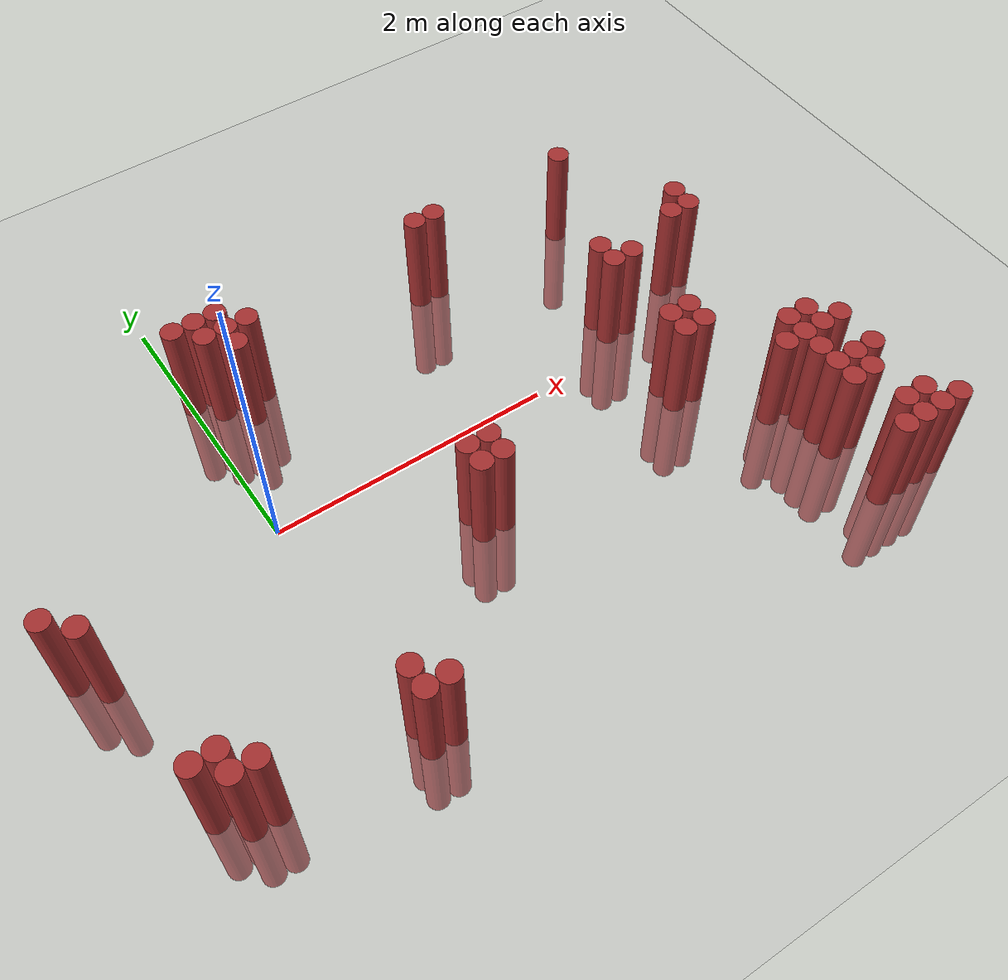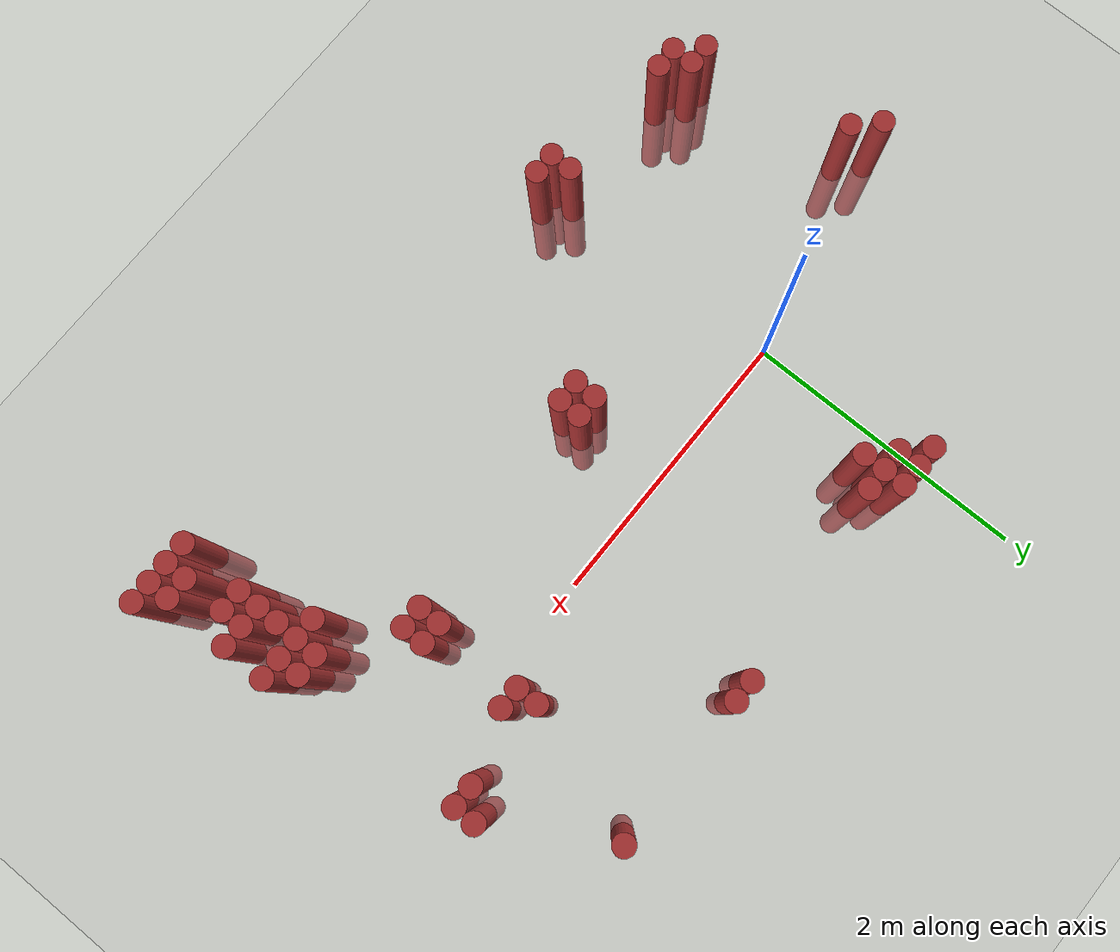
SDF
<sdf version="1.6">
 <world name="default">
  <model name="ground_plane">
   <static>1</static>
   <link name="link">
    <collision name="collision">
     <geometry><plane><normal>0 0 1</normal><size>100 100</size></plane></geometry>
     <surface><friction><ode><mu>100</mu><mu2>50</mu2></ode></friction></surface>
    </collision>
    <visual name="visual">
     <cast_shadows>0</cast_shadows>
     <geometry><plane><normal>0 0 1</normal><size>100 100</size></plane></geometry>
     <material>
      <script><uri>file://media/materials/scripts/gazebo.material</uri><name>Gazebo/Grey</name></script>
     </material>
    </visual>
   </link>
  </model>
  <model name="unit_cylinder_304">
   <static>1</static>
   <pose>-1.475000 -0.275000 0.000000 0.000000 0.000000 0.000000</pose>
   <link name="link">
    <inertial>
     <mass>1</mass>
     <inertia><ixx>0.145833</ixx><ixy>0</ixy><ixz>0</ixz><iyy>0.145833</iyy><iyz>0</iyz><izz>0.125</izz></inertia>
    </inertial>
    <collision name="collision">
     <geometry><cylinder><radius>0.075000</radius><length>1.5</length></cylinder></geometry>
    </collision>
    <visual name="visual">
     <geometry><cylinder><radius>0.075000</radius><length>1.5</length></cylinder></geometry>
     <material>
      <ambient>0.648000 0.192000 0.192000 1</ambient>
      <diffuse>0.648000 0.192000 0.192000 1</diffuse>
     </material>
     <material>
      <script><name>Gazebo/Grey</name><uri>file://media/materials/scripts/gazebo.material</uri></script>
     </material>
    </visual>
   </link>
  </model>
  <model name="unit_cylinder_307">
   <static>1</static>
   <pose>-1.325000 -0.425000 0.000000 0.000000 0.000000 0.000000</pose>
   <link name="link">
    <inertial>
     <mass>1</mass>
     <inertia><ixx>0.145833</ixx><ixy>0</ixy><ixz>0</ixz><iyy>0.145833</iyy><iyz>0</iyz><izz>0.125</izz></inertia>
    </inertial>
    <collision name="collision">
     <geometry><cylinder><radius>0.075000</radius><length>1.5</length></cylinder></geometry>
    </collision>
    <visual name="visual">
     <geometry><cylinder><radius>0.075000</radius><length>1.5</length></cylinder></geometry>
     <material>
      <ambient>0.648000 0.192000 0.192000 1</ambient>
      <diffuse>0.648000 0.192000 0.192000 1</diffuse>
     </material>
     <material>
      <script><name>Gazebo/Grey</name><uri>file://media/materials/scripts/gazebo.material</uri></script>
     </material>
    </visual>
   </link>
  </model>
  <model name="unit_cylinder_310">
   <static>1</static>
   <pose>-1.175000 -1.475000 0.000000 0.000000 0.000000 0.000000</pose>
   <link name="link">
    <inertial>
     <mass>1</mass>
     <inertia><ixx>0.145833</ixx><ixy>0</ixy><ixz>0</ixz><iyy>0.145833</iyy><iyz>0</iyz><izz>0.125</izz></inertia>
    </inertial>
    <collision name="collision">
     <geometry><cylinder><radius>0.075000</radius><length>1.5</length></cylinder></geometry>
    </collision>
    <visual name="visual">
     <geometry><cylinder><radius>0.075000</radius><length>1.5</length></cylinder></geometry>
     <material>
      <ambient>0.648000 0.192000 0.192000 1</ambient>
      <diffuse>0.648000 0.192000 0.192000 1</diffuse>
     </material>
     <material>
      <script><name>Gazebo/Grey</name><uri>file://media/materials/scripts/gazebo.material</uri></script>
     </material>
    </visual>
   </link>
  </model>
  <model name="unit_cylinder_312">
   <static>1</static>
   <pose>-1.025000 -1.625000 0.000000 0.000000 0.000000 0.000000</pose>
   <link name="link">
    <inertial>
     <mass>1</mass>
     <inertia><ixx>0.145833</ixx><ixy>0</ixy><ixz>0</ixz><iyy>0.145833</iyy><iyz>0</iyz><izz>0.125</izz></inertia>
    </inertial>
    <collision name="collision">
     <geometry><cylinder><radius>0.075000</radius><length>1.5</length></cylinder></geometry>
    </collision>
    <visual name="visual">
     <geometry><cylinder><radius>0.075000</radius><length>1.5</length></cylinder></geometry>
     <material>
      <ambient>0.648000 0.192000 0.192000 1</ambient>
      <diffuse>0.648000 0.192000 0.192000 1</diffuse>
     </material>
     <material>
      <script><name>Gazebo/Grey</name><uri>file://media/materials/scripts/gazebo.material</uri></script>
     </material>
    </visual>
   </link>
  </model>
  <model name="unit_cylinder_313">
   <static>1</static>
   <pose>-1.025000 -1.475000 0.000000 0.000000 0.000000 0.000000</pose>
   <link name="link">
    <inertial>
     <mass>1</mass>
     <inertia><ixx>0.145833</ixx><ixy>0</ixy><ixz>0</ixz><iyy>0.145833</iyy><iyz>0</iyz><izz>0.125</izz></inertia>
    </inertial>
    <collision name="collision">
     <geometry><cylinder><radius>0.075000</radius><length>1.5</length></cylinder></geometry>
    </collision>
    <visual name="visual">
     <geometry><cylinder><radius>0.075000</radius><length>1.5</length></cylinder></geometry>
     <material>
      <ambient>0.648000 0.192000 0.192000 1</ambient>
      <diffuse>0.648000 0.192000 0.192000 1</diffuse>
     </material>
     <material>
      <script><name>Gazebo/Grey</name><uri>file://media/materials/scripts/gazebo.material</uri></script>
     </material>
    </visual>
   </link>
  </model>
  <model name="unit_cylinder_314">
   <static>1</static>
   <pose>-0.875000 -1.625000 0.000000 0.000000 0.000000 0.000000</pose>
   <link name="link">
    <inertial>
     <mass>1</mass>
     <inertia><ixx>0.145833</ixx><ixy>0</ixy><ixz>0</ixz><iyy>0.145833</iyy><iyz>0</iyz><izz>0.125</izz></inertia>
    </inertial>
    <collision name="collision">
     <geometry><cylinder><radius>0.075000</radius><length>1.5</length></cylinder></geometry>
    </collision>
    <visual name="visual">
     <geometry><cylinder><radius>0.075000</radius><length>1.5</length></cylinder></geometry>
     <material>
      <ambient>0.648000 0.192000 0.192000 1</ambient>
      <diffuse>0.648000 0.192000 0.192000 1</diffuse>
     </material>
     <material>
      <script><name>Gazebo/Grey</name><uri>file://media/materials/scripts/gazebo.material</uri></script>
     </material>
    </visual>
   </link>
  </model>
  <model name="unit_cylinder_330">
   <static>1</static>
   <pose>0.025000 -1.775000 0.000000 0.000000 0.000000 0.000000</pose>
   <link name="link">
    <inertial>
     <mass>1</mass>
     <inertia><ixx>0.145833</ixx><ixy>0</ixy><ixz>0</ixz><iyy>0.145833</iyy><iyz>0</iyz><izz>0.125</izz></inertia>
    </inertial>
    <collision name="collision">
     <geometry><cylinder><radius>0.075000</radius><length>1.5</length></cylinder></geometry>
    </collision>
    <visual name="visual">
     <geometry><cylinder><radius>0.075000</radius><length>1.5</length></cylinder></geometry>
     <material>
      <ambient>0.648000 0.192000 0.192000 1</ambient>
      <diffuse>0.648000 0.192000 0.192000 1</diffuse>
     </material>
     <material>
      <script><name>Gazebo/Grey</name><uri>file://media/materials/scripts/gazebo.material</uri></script>
     </material>
    </visual>
   </link>
  </model>
  <model name="unit_cylinder_331">
   <static>1</static>
   <pose>0.025000 -1.625000 0.000000 0.000000 0.000000 0.000000</pose>
   <link name="link">
    <inertial>
     <mass>1</mass>
     <inertia><ixx>0.145833</ixx><ixy>0</ixy><ixz>0</ixz><iyy>0.145833</iyy><iyz>0</iyz><izz>0.125</izz></inertia>
    </inertial>
    <collision name="collision">
     <geometry><cylinder><radius>0.075000</radius><length>1.5</length></cylinder></geometry>
    </collision>
    <visual name="visual">
     <geometry><cylinder><radius>0.075000</radius><length>1.5</length></cylinder></geometry>
     <material>
      <ambient>0.648000 0.192000 0.192000 1</ambient>
      <diffuse>0.648000 0.192000 0.192000 1</diffuse>
     </material>
     <material>
      <script><name>Gazebo/Grey</name><uri>file://media/materials/scripts/gazebo.material</uri></script>
     </material>
    </visual>
   </link>
  </model>
  <model name="unit_cylinder_332">
   <static>1</static>
   <pose>0.025000 1.225000 0.000000 0.000000 0.000000 0.000000</pose>
   <link name="link">
    <inertial>
     <mass>1</mass>
     <inertia><ixx>0.145833</ixx><ixy>0</ixy><ixz>0</ixz><iyy>0.145833</iyy><iyz>0</iyz><izz>0.125</izz></inertia>
    </inertial>
    <collision name="collision">
     <geometry><cylinder><radius>0.075000</radius><length>1.5</length></cylinder></geometry>
    </collision>
    <visual name="visual">
     <geometry><cylinder><radius>0.075000</radius><length>1.5</length></cylinder></geometry>
     <material>
      <ambient>0.648000 0.192000 0.192000 1</ambient>
      <diffuse>0.648000 0.192000 0.192000 1</diffuse>
     </material>
     <material>
      <script><name>Gazebo/Grey</name><uri>file://media/materials/scripts/gazebo.material</uri></script>
     </material>
    </visual>
   </link>
  </model>
  <model name="unit_cylinder_336">
   <static>1</static>
   <pose>0.175000 -1.775000 0.000000 0.000000 0.000000 0.000000</pose>
   <link name="link">
    <inertial>
     <mass>1</mass>
     <inertia><ixx>0.145833</ixx><ixy>0</ixy><ixz>0</ixz><iyy>0.145833</iyy><iyz>0</iyz><izz>0.125</izz></inertia>
    </inertial>
    <collision name="collision">
     <geometry><cylinder><radius>0.075000</radius><length>1.5</length></cylinder></geometry>
    </collision>
    <visual name="visual">
     <geometry><cylinder><radius>0.075000</radius><length>1.5</length></cylinder></geometry>
     <material>
      <ambient>0.648000 0.192000 0.192000 1</ambient>
      <diffuse>0.648000 0.192000 0.192000 1</diffuse>
     </material>
     <material>
      <script><name>Gazebo/Grey</name><uri>file://media/materials/scripts/gazebo.material</uri></script>
     </material>
    </visual>
   </link>
  </model>
  <model name="unit_cylinder_337">
   <static>1</static>
   <pose>0.175000 1.075000 0.000000 0.000000 0.000000 0.000000</pose>
   <link name="link">
    <inertial>
     <mass>1</mass>
     <inertia><ixx>0.145833</ixx><ixy>0</ixy><ixz>0</ixz><iyy>0.145833</iyy><iyz>0</iyz><izz>0.125</izz></inertia>
    </inertial>
    <collision name="collision">
     <geometry><cylinder><radius>0.075000</radius><length>1.5</length></cylinder></geometry>
    </collision>
    <visual name="visual">
     <geometry><cylinder><radius>0.075000</radius><length>1.5</length></cylinder></geometry>
     <material>
      <ambient>0.648000 0.192000 0.192000 1</ambient>
      <diffuse>0.648000 0.192000 0.192000 1</diffuse>
     </material>
     <material>
      <script><name>Gazebo/Grey</name><uri>file://media/materials/scripts/gazebo.material</uri></script>
     </material>
    </visual>
   </link>
  </model>
  <model name="unit_cylinder_338">
   <static>1</static>
   <pose>0.175000 1.225000 0.000000 0.000000 0.000000 0.000000</pose>
   <link name="link">
    <inertial>
     <mass>1</mass>
     <inertia><ixx>0.145833</ixx><ixy>0</ixy><ixz>0</ixz><iyy>0.145833</iyy><iyz>0</iyz><izz>0.125</izz></inertia>
    </inertial>
    <collision name="collision">
     <geometry><cylinder><radius>0.075000</radius><length>1.5</length></cylinder></geometry>
    </collision>
    <visual name="visual">
     <geometry><cylinder><radius>0.075000</radius><length>1.5</length></cylinder></geometry>
     <material>
      <ambient>0.648000 0.192000 0.192000 1</ambient>
      <diffuse>0.648000 0.192000 0.192000 1</diffuse>
     </material>
     <material>
      <script><name>Gazebo/Grey</name><uri>file://media/materials/scripts/gazebo.material</uri></script>
     </material>
    </visual>
   </link>
  </model>
  <model name="unit_cylinder_340">
   <static>1</static>
   <pose>0.325000 0.925000 0.000000 0.000000 0.000000 0.000000</pose>
   <link name="link">
    <inertial>
     <mass>1</mass>
     <inertia><ixx>0.145833</ixx><ixy>0</ixy><ixz>0</ixz><iyy>0.145833</iyy><iyz>0</iyz><izz>0.125</izz></inertia>
    </inertial>
    <collision name="collision">
     <geometry><cylinder><radius>0.075000</radius><length>1.5</length></cylinder></geometry>
    </collision>
    <visual name="visual">
     <geometry><cylinder><radius>0.075000</radius><length>1.5</length></cylinder></geometry>
     <material>
      <ambient>0.648000 0.192000 0.192000 1</ambient>
      <diffuse>0.648000 0.192000 0.192000 1</diffuse>
     </material>
     <material>
      <script><name>Gazebo/Grey</name><uri>file://media/materials/scripts/gazebo.material</uri></script>
     </material>
    </visual>
   </link>
  </model>
  <model name="unit_cylinder_341">
   <static>1</static>
   <pose>0.325000 1.075000 0.000000 0.000000 0.000000 0.000000</pose>
   <link name="link">
    <inertial>
     <mass>1</mass>
     <inertia><ixx>0.145833</ixx><ixy>0</ixy><ixz>0</ixz><iyy>0.145833</iyy><iyz>0</iyz><izz>0.125</izz></inertia>
    </inertial>
    <collision name="collision">
     <geometry><cylinder><radius>0.075000</radius><length>1.5</length></cylinder></geometry>
    </collision>
    <visual name="visual">
     <geometry><cylinder><radius>0.075000</radius><length>1.5</length></cylinder></geometry>
     <material>
      <ambient>0.648000 0.192000 0.192000 1</ambient>
      <diffuse>0.648000 0.192000 0.192000 1</diffuse>
     </material>
     <material>
      <script><name>Gazebo/Grey</name><uri>file://media/materials/scripts/gazebo.material</uri></script>
     </material>
    </visual>
   </link>
  </model>
  <model name="unit_cylinder_342">
   <static>1</static>
   <pose>0.325000 1.225000 0.000000 0.000000 0.000000 0.000000</pose>
   <link name="link">
    <inertial>
     <mass>1</mass>
     <inertia><ixx>0.145833</ixx><ixy>0</ixy><ixz>0</ixz><iyy>0.145833</iyy><iyz>0</iyz><izz>0.125</izz></inertia>
    </inertial>
    <collision name="collision">
     <geometry><cylinder><radius>0.075000</radius><length>1.5</length></cylinder></geometry>
    </collision>
    <visual name="visual">
     <geometry><cylinder><radius>0.075000</radius><length>1.5</length></cylinder></geometry>
     <material>
      <ambient>0.648000 0.192000 0.192000 1</ambient>
      <diffuse>0.648000 0.192000 0.192000 1</diffuse>
     </material>
     <material>
      <script><name>Gazebo/Grey</name><uri>file://media/materials/scripts/gazebo.material</uri></script>
     </material>
    </visual>
   </link>
  </model>
  <model name="unit_cylinder_344">
   <static>1</static>
   <pose>0.475000 1.075000 0.000000 0.000000 0.000000 0.000000</pose>
   <link name="link">
    <inertial>
     <mass>1</mass>
     <inertia><ixx>0.145833</ixx><ixy>0</ixy><ixz>0</ixz><iyy>0.145833</iyy><iyz>0</iyz><izz>0.125</izz></inertia>
    </inertial>
    <collision name="collision">
     <geometry><cylinder><radius>0.075000</radius><length>1.5</length></cylinder></geometry>
    </collision>
    <visual name="visual">
     <geometry><cylinder><radius>0.075000</radius><length>1.5</length></cylinder></geometry>
     <material>
      <ambient>0.648000 0.192000 0.192000 1</ambient>
      <diffuse>0.648000 0.192000 0.192000 1</diffuse>
     </material>
     <material>
      <script><name>Gazebo/Grey</name><uri>file://media/materials/scripts/gazebo.material</uri></script>
     </material>
    </visual>
   </link>
  </model>
  <model name="unit_cylinder_345">
   <static>1</static>
   <pose>1.075000 -0.725000 0.000000 0.000000 0.000000 0.000000</pose>
   <link name="link">
    <inertial>
     <mass>1</mass>
     <inertia><ixx>0.145833</ixx><ixy>0</ixy><ixz>0</ixz><iyy>0.145833</iyy><iyz>0</iyz><izz>0.125</izz></inertia>
    </inertial>
    <collision name="collision">
     <geometry><cylinder><radius>0.075000</radius><length>1.5</length></cylinder></geometry>
    </collision>
    <visual name="visual">
     <geometry><cylinder><radius>0.075000</radius><length>1.5</length></cylinder></geometry>
     <material>
      <ambient>0.648000 0.192000 0.192000 1</ambient>
      <diffuse>0.648000 0.192000 0.192000 1</diffuse>
     </material>
     <material>
      <script><name>Gazebo/Grey</name><uri>file://media/materials/scripts/gazebo.material</uri></script>
     </material>
    </visual>
   </link>
  </model>
  <model name="unit_cylinder_346">
   <static>1</static>
   <pose>1.075000 -0.575000 0.000000 0.000000 0.000000 0.000000</pose>
   <link name="link">
    <inertial>
     <mass>1</mass>
     <inertia><ixx>0.145833</ixx><ixy>0</ixy><ixz>0</ixz><iyy>0.145833</iyy><iyz>0</iyz><izz>0.125</izz></inertia>
    </inertial>
    <collision name="collision">
     <geometry><cylinder><radius>0.075000</radius><length>1.5</length></cylinder></geometry>
    </collision>
    <visual name="visual">
     <geometry><cylinder><radius>0.075000</radius><length>1.5</length></cylinder></geometry>
     <material>
      <ambient>0.648000 0.192000 0.192000 1</ambient>
      <diffuse>0.648000 0.192000 0.192000 1</diffuse>
     </material>
     <material>
      <script><name>Gazebo/Grey</name><uri>file://media/materials/scripts/gazebo.material</uri></script>
     </material>
    </visual>
   </link>
  </model>
  <model name="unit_cylinder_351">
   <static>1</static>
   <pose>1.225000 -0.725000 0.000000 0.000000 0.000000 0.000000</pose>
   <link name="link">
    <inertial>
     <mass>1</mass>
     <inertia><ixx>0.145833</ixx><ixy>0</ixy><ixz>0</ixz><iyy>0.145833</iyy><iyz>0</iyz><izz>0.125</izz></inertia>
    </inertial>
    <collision name="collision">
     <geometry><cylinder><radius>0.075000</radius><length>1.5</length></cylinder></geometry>
    </collision>
    <visual name="visual">
     <geometry><cylinder><radius>0.075000</radius><length>1.5</length></cylinder></geometry>
     <material>
      <ambient>0.648000 0.192000 0.192000 1</ambient>
      <diffuse>0.648000 0.192000 0.192000 1</diffuse>
     </material>
     <material>
      <script><name>Gazebo/Grey</name><uri>file://media/materials/scripts/gazebo.material</uri></script>
     </material>
    </visual>
   </link>
  </model>
  <model name="unit_cylinder_352">
   <static>1</static>
   <pose>1.225000 -0.575000 0.000000 0.000000 0.000000 0.000000</pose>
   <link name="link">
    <inertial>
     <mass>1</mass>
     <inertia><ixx>0.145833</ixx><ixy>0</ixy><ixz>0</ixz><iyy>0.145833</iyy><iyz>0</iyz><izz>0.125</izz></inertia>
    </inertial>
    <collision name="collision">
     <geometry><cylinder><radius>0.075000</radius><length>1.5</length></cylinder></geometry>
    </collision>
    <visual name="visual">
     <geometry><cylinder><radius>0.075000</radius><length>1.5</length></cylinder></geometry>
     <material>
      <ambient>0.648000 0.192000 0.192000 1</ambient>
      <diffuse>0.648000 0.192000 0.192000 1</diffuse>
     </material>
     <material>
      <script><name>Gazebo/Grey</name><uri>file://media/materials/scripts/gazebo.material</uri></script>
     </material>
    </visual>
   </link>
  </model>
  <model name="unit_cylinder_376">
   <static>1</static>
   <pose>1.825000 1.225000 0.000000 0.000000 0.000000 0.000000</pose>
   <link name="link">
    <inertial>
     <mass>1</mass>
     <inertia><ixx>0.145833</ixx><ixy>0</ixy><ixz>0</ixz><iyy>0.145833</iyy><iyz>0</iyz><izz>0.125</izz></inertia>
    </inertial>
    <collision name="collision">
     <geometry><cylinder><radius>0.075000</radius><length>1.5</length></cylinder></geometry>
    </collision>
    <visual name="visual">
     <geometry><cylinder><radius>0.075000</radius><length>1.5</length></cylinder></geometry>
     <material>
      <ambient>0.648000 0.192000 0.192000 1</ambient>
      <diffuse>0.648000 0.192000 0.192000 1</diffuse>
     </material>
     <material>
      <script><name>Gazebo/Grey</name><uri>file://media/materials/scripts/gazebo.material</uri></script>
     </material>
    </visual>
   </link>
  </model>
  <model name="unit_cylinder_380">
   <static>1</static>
   <pose>1.975000 1.225000 0.000000 0.000000 0.000000 0.000000</pose>
   <link name="link">
    <inertial>
     <mass>1</mass>
     <inertia><ixx>0.145833</ixx><ixy>0</ixy><ixz>0</ixz><iyy>0.145833</iyy><iyz>0</iyz><izz>0.125</izz></inertia>
    </inertial>
    <collision name="collision">
     <geometry><cylinder><radius>0.075000</radius><length>1.5</length></cylinder></geometry>
    </collision>
    <visual name="visual">
     <geometry><cylinder><radius>0.075000</radius><length>1.5</length></cylinder></geometry>
     <material>
      <ambient>0.648000 0.192000 0.192000 1</ambient>
      <diffuse>0.648000 0.192000 0.192000 1</diffuse>
     </material>
     <material>
      <script><name>Gazebo/Grey</name><uri>file://media/materials/scripts/gazebo.material</uri></script>
     </material>
    </visual>
   </link>
  </model>
  <model name="unit_cylinder_403">
   <static>1</static>
   <pose>2.725000 -0.575000 0.000000 0.000000 0.000000 0.000000</pose>
   <link name="link">
    <inertial>
     <mass>1</mass>
     <inertia><ixx>0.145833</ixx><ixy>0</ixy><ixz>0</ixz><iyy>0.145833</iyy><iyz>0</iyz><izz>0.125</izz></inertia>
    </inertial>
    <collision name="collision">
     <geometry><cylinder><radius>0.075000</radius><length>1.5</length></cylinder></geometry>
    </collision>
    <visual name="visual">
     <geometry><cylinder><radius>0.075000</radius><length>1.5</length></cylinder></geometry>
     <material>
      <ambient>0.648000 0.192000 0.192000 1</ambient>
      <diffuse>0.648000 0.192000 0.192000 1</diffuse>
     </material>
     <material>
      <script><name>Gazebo/Grey</name><uri>file://media/materials/scripts/gazebo.material</uri></script>
     </material>
    </visual>
   </link>
  </model>
  <model name="unit_cylinder_404">
   <static>1</static>
   <pose>2.725000 -0.425000 0.000000 0.000000 0.000000 0.000000</pose>
   <link name="link">
    <inertial>
     <mass>1</mass>
     <inertia><ixx>0.145833</ixx><ixy>0</ixy><ixz>0</ixz><iyy>0.145833</iyy><iyz>0</iyz><izz>0.125</izz></inertia>
    </inertial>
    <collision name="collision">
     <geometry><cylinder><radius>0.075000</radius><length>1.5</length></cylinder></geometry>
    </collision>
    <visual name="visual">
     <geometry><cylinder><radius>0.075000</radius><length>1.5</length></cylinder></geometry>
     <material>
      <ambient>0.648000 0.192000 0.192000 1</ambient>
      <diffuse>0.648000 0.192000 0.192000 1</diffuse>
     </material>
     <material>
      <script><name>Gazebo/Grey</name><uri>file://media/materials/scripts/gazebo.material</uri></script>
     </material>
    </visual>
   </link>
  </model>
  <model name="unit_cylinder_405">
   <static>1</static>
   <pose>2.725000 0.175000 0.000000 0.000000 0.000000 0.000000</pose>
   <link name="link">
    <inertial>
     <mass>1</mass>
     <inertia><ixx>0.145833</ixx><ixy>0</ixy><ixz>0</ixz><iyy>0.145833</iyy><iyz>0</iyz><izz>0.125</izz></inertia>
    </inertial>
    <collision name="collision">
     <geometry><cylinder><radius>0.075000</radius><length>1.5</length></cylinder></geometry>
    </collision>
    <visual name="visual">
     <geometry><cylinder><radius>0.075000</radius><length>1.5</length></cylinder></geometry>
     <material>
      <ambient>0.648000 0.192000 0.192000 1</ambient>
      <diffuse>0.648000 0.192000 0.192000 1</diffuse>
     </material>
     <material>
      <script><name>Gazebo/Grey</name><uri>file://media/materials/scripts/gazebo.material</uri></script>
     </material>
    </visual>
   </link>
  </model>
  <model name="unit_cylinder_406">
   <static>1</static>
   <pose>2.725000 0.325000 0.000000 0.000000 0.000000 0.000000</pose>
   <link name="link">
    <inertial>
     <mass>1</mass>
     <inertia><ixx>0.145833</ixx><ixy>0</ixy><ixz>0</ixz><iyy>0.145833</iyy><iyz>0</iyz><izz>0.125</izz></inertia>
    </inertial>
    <collision name="collision">
     <geometry><cylinder><radius>0.075000</radius><length>1.5</length></cylinder></geometry>
    </collision>
    <visual name="visual">
     <geometry><cylinder><radius>0.075000</radius><length>1.5</length></cylinder></geometry>
     <material>
      <ambient>0.648000 0.192000 0.192000 1</ambient>
      <diffuse>0.648000 0.192000 0.192000 1</diffuse>
     </material>
     <material>
      <script><name>Gazebo/Grey</name><uri>file://media/materials/scripts/gazebo.material</uri></script>
     </material>
    </visual>
   </link>
  </model>
  <model name="unit_cylinder_411">
   <static>1</static>
   <pose>2.875000 -0.575000 0.000000 0.000000 0.000000 0.000000</pose>
   <link name="link">
    <inertial>
     <mass>1</mass>
     <inertia><ixx>0.145833</ixx><ixy>0</ixy><ixz>0</ixz><iyy>0.145833</iyy><iyz>0</iyz><izz>0.125</izz></inertia>
    </inertial>
    <collision name="collision">
     <geometry><cylinder><radius>0.075000</radius><length>1.5</length></cylinder></geometry>
    </collision>
    <visual name="visual">
     <geometry><cylinder><radius>0.075000</radius><length>1.5</length></cylinder></geometry>
     <material>
      <ambient>0.648000 0.192000 0.192000 1</ambient>
      <diffuse>0.648000 0.192000 0.192000 1</diffuse>
     </material>
     <material>
      <script><name>Gazebo/Grey</name><uri>file://media/materials/scripts/gazebo.material</uri></script>
     </material>
    </visual>
   </link>
  </model>
  <model name="unit_cylinder_412">
   <static>1</static>
   <pose>2.875000 -0.425000 0.000000 0.000000 0.000000 0.000000</pose>
   <link name="link">
    <inertial>
     <mass>1</mass>
     <inertia><ixx>0.145833</ixx><ixy>0</ixy><ixz>0</ixz><iyy>0.145833</iyy><iyz>0</iyz><izz>0.125</izz></inertia>
    </inertial>
    <collision name="collision">
     <geometry><cylinder><radius>0.075000</radius><length>1.5</length></cylinder></geometry>
    </collision>
    <visual name="visual">
     <geometry><cylinder><radius>0.075000</radius><length>1.5</length></cylinder></geometry>
     <material>
      <ambient>0.648000 0.192000 0.192000 1</ambient>
      <diffuse>0.648000 0.192000 0.192000 1</diffuse>
     </material>
     <material>
      <script><name>Gazebo/Grey</name><uri>file://media/materials/scripts/gazebo.material</uri></script>
     </material>
    </visual>
   </link>
  </model>
  <model name="unit_cylinder_413">
   <static>1</static>
   <pose>2.875000 0.175000 0.000000 0.000000 0.000000 0.000000</pose>
   <link name="link">
    <inertial>
     <mass>1</mass>
     <inertia><ixx>0.145833</ixx><ixy>0</ixy><ixz>0</ixz><iyy>0.145833</iyy><iyz>0</iyz><izz>0.125</izz></inertia>
    </inertial>
    <collision name="collision">
     <geometry><cylinder><radius>0.075000</radius><length>1.5</length></cylinder></geometry>
    </collision>
    <visual name="visual">
     <geometry><cylinder><radius>0.075000</radius><length>1.5</length></cylinder></geometry>
     <material>
      <ambient>0.648000 0.192000 0.192000 1</ambient>
      <diffuse>0.648000 0.192000 0.192000 1</diffuse>
     </material>
     <material>
      <script><name>Gazebo/Grey</name><uri>file://media/materials/scripts/gazebo.material</uri></script>
     </material>
    </visual>
   </link>
  </model>
  <model name="unit_cylinder_416">
   <static>1</static>
   <pose>3.025000 1.225000 0.000000 0.000000 0.000000 0.000000</pose>
   <link name="link">
    <inertial>
     <mass>1</mass>
     <inertia><ixx>0.145833</ixx><ixy>0</ixy><ixz>0</ixz><iyy>0.145833</iyy><iyz>0</iyz><izz>0.125</izz></inertia>
    </inertial>
    <collision name="collision">
     <geometry><cylinder><radius>0.075000</radius><length>1.5</length></cylinder></geometry>
    </collision>
    <visual name="visual">
     <geometry><cylinder><radius>0.075000</radius><length>1.5</length></cylinder></geometry>
     <material>
      <ambient>0.648000 0.192000 0.192000 1</ambient>
      <diffuse>0.648000 0.192000 0.192000 1</diffuse>
     </material>
     <material>
      <script><name>Gazebo/Grey</name><uri>file://media/materials/scripts/gazebo.material</uri></script>
     </material>
    </visual>
   </link>
  </model>
  <model name="unit_cylinder_420">
   <static>1</static>
   <pose>3.175000 -1.025000 0.000000 0.000000 0.000000 0.000000</pose>
   <link name="link">
    <inertial>
     <mass>1</mass>
     <inertia><ixx>0.145833</ixx><ixy>0</ixy><ixz>0</ixz><iyy>0.145833</iyy><iyz>0</iyz><izz>0.125</izz></inertia>
    </inertial>
    <collision name="collision">
     <geometry><cylinder><radius>0.075000</radius><length>1.5</length></cylinder></geometry>
    </collision>
    <visual name="visual">
     <geometry><cylinder><radius>0.075000</radius><length>1.5</length></cylinder></geometry>
     <material>
      <ambient>0.648000 0.192000 0.192000 1</ambient>
      <diffuse>0.648000 0.192000 0.192000 1</diffuse>
     </material>
     <material>
      <script><name>Gazebo/Grey</name><uri>file://media/materials/scripts/gazebo.material</uri></script>
     </material>
    </visual>
   </link>
  </model>
  <model name="unit_cylinder_425">
   <static>1</static>
   <pose>3.325000 -1.925000 0.000000 0.000000 0.000000 0.000000</pose>
   <link name="link">
    <inertial>
     <mass>1</mass>
     <inertia><ixx>0.145833</ixx><ixy>0</ixy><ixz>0</ixz><iyy>0.145833</iyy><iyz>0</iyz><izz>0.125</izz></inertia>
    </inertial>
    <collision name="collision">
     <geometry><cylinder><radius>0.075000</radius><length>1.5</length></cylinder></geometry>
    </collision>
    <visual name="visual">
     <geometry><cylinder><radius>0.075000</radius><length>1.5</length></cylinder></geometry>
     <material>
      <ambient>0.648000 0.192000 0.192000 1</ambient>
      <diffuse>0.648000 0.192000 0.192000 1</diffuse>
     </material>
     <material>
      <script><name>Gazebo/Grey</name><uri>file://media/materials/scripts/gazebo.material</uri></script>
     </material>
    </visual>
   </link>
  </model>
  <model name="unit_cylinder_426">
   <static>1</static>
   <pose>3.325000 -1.475000 0.000000 0.000000 0.000000 0.000000</pose>
   <link name="link">
    <inertial>
     <mass>1</mass>
     <inertia><ixx>0.145833</ixx><ixy>0</ixy><ixz>0</ixz><iyy>0.145833</iyy><iyz>0</iyz><izz>0.125</izz></inertia>
    </inertial>
    <collision name="collision">
     <geometry><cylinder><radius>0.075000</radius><length>1.5</length></cylinder></geometry>
    </collision>
    <visual name="visual">
     <geometry><cylinder><radius>0.075000</radius><length>1.5</length></cylinder></geometry>
     <material>
      <ambient>0.648000 0.192000 0.192000 1</ambient>
      <diffuse>0.648000 0.192000 0.192000 1</diffuse>
     </material>
     <material>
      <script><name>Gazebo/Grey</name><uri>file://media/materials/scripts/gazebo.material</uri></script>
     </material>
    </visual>
   </link>
  </model>
  <model name="unit_cylinder_427">
   <static>1</static>
   <pose>3.325000 -1.325000 0.000000 0.000000 0.000000 0.000000</pose>
   <link name="link">
    <inertial>
     <mass>1</mass>
     <inertia><ixx>0.145833</ixx><ixy>0</ixy><ixz>0</ixz><iyy>0.145833</iyy><iyz>0</iyz><izz>0.125</izz></inertia>
    </inertial>
    <collision name="collision">
     <geometry><cylinder><radius>0.075000</radius><length>1.5</length></cylinder></geometry>
    </collision>
    <visual name="visual">
     <geometry><cylinder><radius>0.075000</radius><length>1.5</length></cylinder></geometry>
     <material>
      <ambient>0.648000 0.192000 0.192000 1</ambient>
      <diffuse>0.648000 0.192000 0.192000 1</diffuse>
     </material>
     <material>
      <script><name>Gazebo/Grey</name><uri>file://media/materials/scripts/gazebo.material</uri></script>
     </material>
    </visual>
   </link>
  </model>
  <model name="unit_cylinder_428">
   <static>1</static>
   <pose>3.325000 -1.175000 0.000000 0.000000 0.000000 0.000000</pose>
   <link name="link">
    <inertial>
     <mass>1</mass>
     <inertia><ixx>0.145833</ixx><ixy>0</ixy><ixz>0</ixz><iyy>0.145833</iyy><iyz>0</iyz><izz>0.125</izz></inertia>
    </inertial>
    <collision name="collision">
     <geometry><cylinder><radius>0.075000</radius><length>1.5</length></cylinder></geometry>
    </collision>
    <visual name="visual">
     <geometry><cylinder><radius>0.075000</radius><length>1.5</length></cylinder></geometry>
     <material>
      <ambient>0.648000 0.192000 0.192000 1</ambient>
      <diffuse>0.648000 0.192000 0.192000 1</diffuse>
     </material>
     <material>
      <script><name>Gazebo/Grey</name><uri>file://media/materials/scripts/gazebo.material</uri></script>
     </material>
    </visual>
   </link>
  </model>
  <model name="unit_cylinder_429">
   <static>1</static>
   <pose>3.325000 -1.025000 0.000000 0.000000 0.000000 0.000000</pose>
   <link name="link">
    <inertial>
     <mass>1</mass>
     <inertia><ixx>0.145833</ixx><ixy>0</ixy><ixz>0</ixz><iyy>0.145833</iyy><iyz>0</iyz><izz>0.125</izz></inertia>
    </inertial>
    <collision name="collision">
     <geometry><cylinder><radius>0.075000</radius><length>1.5</length></cylinder></geometry>
    </collision>
    <visual name="visual">
     <geometry><cylinder><radius>0.075000</radius><length>1.5</length></cylinder></geometry>
     <material>
      <ambient>0.648000 0.192000 0.192000 1</ambient>
      <diffuse>0.648000 0.192000 0.192000 1</diffuse>
     </material>
     <material>
      <script><name>Gazebo/Grey</name><uri>file://media/materials/scripts/gazebo.material</uri></script>
     </material>
    </visual>
   </link>
  </model>
  <model name="unit_cylinder_430">
   <static>1</static>
   <pose>3.325000 -0.875000 0.000000 0.000000 0.000000 0.000000</pose>
   <link name="link">
    <inertial>
     <mass>1</mass>
     <inertia><ixx>0.145833</ixx><ixy>0</ixy><ixz>0</ixz><iyy>0.145833</iyy><iyz>0</iyz><izz>0.125</izz></inertia>
    </inertial>
    <collision name="collision">
     <geometry><cylinder><radius>0.075000</radius><length>1.5</length></cylinder></geometry>
    </collision>
    <visual name="visual">
     <geometry><cylinder><radius>0.075000</radius><length>1.5</length></cylinder></geometry>
     <material>
      <ambient>0.648000 0.192000 0.192000 1</ambient>
      <diffuse>0.648000 0.192000 0.192000 1</diffuse>
     </material>
     <material>
      <script><name>Gazebo/Grey</name><uri>file://media/materials/scripts/gazebo.material</uri></script>
     </material>
    </visual>
   </link>
  </model>
  <model name="unit_cylinder_431">
   <static>1</static>
   <pose>3.325000 0.325000 0.000000 0.000000 0.000000 0.000000</pose>
   <link name="link">
    <inertial>
     <mass>1</mass>
     <inertia><ixx>0.145833</ixx><ixy>0</ixy><ixz>0</ixz><iyy>0.145833</iyy><iyz>0</iyz><izz>0.125</izz></inertia>
    </inertial>
    <collision name="collision">
     <geometry><cylinder><radius>0.075000</radius><length>1.5</length></cylinder></geometry>
    </collision>
    <visual name="visual">
     <geometry><cylinder><radius>0.075000</radius><length>1.5</length></cylinder></geometry>
     <material>
      <ambient>0.648000 0.192000 0.192000 1</ambient>
      <diffuse>0.648000 0.192000 0.192000 1</diffuse>
     </material>
     <material>
      <script><name>Gazebo/Grey</name><uri>file://media/materials/scripts/gazebo.material</uri></script>
     </material>
    </visual>
   </link>
  </model>
  <model name="unit_cylinder_432">
   <static>1</static>
   <pose>3.475000 -1.925000 0.000000 0.000000 0.000000 0.000000</pose>
   <link name="link">
    <inertial>
     <mass>1</mass>
     <inertia><ixx>0.145833</ixx><ixy>0</ixy><ixz>0</ixz><iyy>0.145833</iyy><iyz>0</iyz><izz>0.125</izz></inertia>
    </inertial>
    <collision name="collision">
     <geometry><cylinder><radius>0.075000</radius><length>1.5</length></cylinder></geometry>
    </collision>
    <visual name="visual">
     <geometry><cylinder><radius>0.075000</radius><length>1.5</length></cylinder></geometry>
     <material>
      <ambient>0.648000 0.192000 0.192000 1</ambient>
      <diffuse>0.648000 0.192000 0.192000 1</diffuse>
     </material>
     <material>
      <script><name>Gazebo/Grey</name><uri>file://media/materials/scripts/gazebo.material</uri></script>
     </material>
    </visual>
   </link>
  </model>
  <model name="unit_cylinder_433">
   <static>1</static>
   <pose>3.475000 -1.775000 0.000000 0.000000 0.000000 0.000000</pose>
   <link name="link">
    <inertial>
     <mass>1</mass>
     <inertia><ixx>0.145833</ixx><ixy>0</ixy><ixz>0</ixz><iyy>0.145833</iyy><iyz>0</iyz><izz>0.125</izz></inertia>
    </inertial>
    <collision name="collision">
     <geometry><cylinder><radius>0.075000</radius><length>1.5</length></cylinder></geometry>
    </collision>
    <visual name="visual">
     <geometry><cylinder><radius>0.075000</radius><length>1.5</length></cylinder></geometry>
     <material>
      <ambient>0.648000 0.192000 0.192000 1</ambient>
      <diffuse>0.648000 0.192000 0.192000 1</diffuse>
     </material>
     <material>
      <script><name>Gazebo/Grey</name><uri>file://media/materials/scripts/gazebo.material</uri></script>
     </material>
    </visual>
   </link>
  </model>
  <model name="unit_cylinder_434">
   <static>1</static>
   <pose>3.475000 -1.475000 0.000000 0.000000 0.000000 0.000000</pose>
   <link name="link">
    <inertial>
     <mass>1</mass>
     <inertia><ixx>0.145833</ixx><ixy>0</ixy><ixz>0</ixz><iyy>0.145833</iyy><iyz>0</iyz><izz>0.125</izz></inertia>
    </inertial>
    <collision name="collision">
     <geometry><cylinder><radius>0.075000</radius><length>1.5</length></cylinder></geometry>
    </collision>
    <visual name="visual">
     <geometry><cylinder><radius>0.075000</radius><length>1.5</length></cylinder></geometry>
     <material>
      <ambient>0.648000 0.192000 0.192000 1</ambient>
      <diffuse>0.648000 0.192000 0.192000 1</diffuse>
     </material>
     <material>
      <script><name>Gazebo/Grey</name><uri>file://media/materials/scripts/gazebo.material</uri></script>
     </material>
    </visual>
   </link>
  </model>
  <model name="unit_cylinder_435">
   <static>1</static>
   <pose>3.475000 -1.325000 0.000000 0.000000 0.000000 0.000000</pose>
   <link name="link">
    <inertial>
     <mass>1</mass>
     <inertia><ixx>0.145833</ixx><ixy>0</ixy><ixz>0</ixz><iyy>0.145833</iyy><iyz>0</iyz><izz>0.125</izz></inertia>
    </inertial>
    <collision name="collision">
     <geometry><cylinder><radius>0.075000</radius><length>1.5</length></cylinder></geometry>
    </collision>
    <visual name="visual">
     <geometry><cylinder><radius>0.075000</radius><length>1.5</length></cylinder></geometry>
     <material>
      <ambient>0.648000 0.192000 0.192000 1</ambient>
      <diffuse>0.648000 0.192000 0.192000 1</diffuse>
     </material>
     <material>
      <script><name>Gazebo/Grey</name><uri>file://media/materials/scripts/gazebo.material</uri></script>
     </material>
    </visual>
   </link>
  </model>
  <model name="unit_cylinder_436">
   <static>1</static>
   <pose>3.475000 -1.025000 0.000000 0.000000 0.000000 0.000000</pose>
   <link name="link">
    <inertial>
     <mass>1</mass>
     <inertia><ixx>0.145833</ixx><ixy>0</ixy><ixz>0</ixz><iyy>0.145833</iyy><iyz>0</iyz><izz>0.125</izz></inertia>
    </inertial>
    <collision name="collision">
     <geometry><cylinder><radius>0.075000</radius><length>1.5</length></cylinder></geometry>
    </collision>
    <visual name="visual">
     <geometry><cylinder><radius>0.075000</radius><length>1.5</length></cylinder></geometry>
     <material>
      <ambient>0.648000 0.192000 0.192000 1</ambient>
      <diffuse>0.648000 0.192000 0.192000 1</diffuse>
     </material>
     <material>
      <script><name>Gazebo/Grey</name><uri>file://media/materials/scripts/gazebo.material</uri></script>
     </material>
    </visual>
   </link>
  </model>
  <model name="unit_cylinder_437">
   <static>1</static>
   <pose>3.475000 -0.875000 0.000000 0.000000 0.000000 0.000000</pose>
   <link name="link">
    <inertial>
     <mass>1</mass>
     <inertia><ixx>0.145833</ixx><ixy>0</ixy><ixz>0</ixz><iyy>0.145833</iyy><iyz>0</iyz><izz>0.125</izz></inertia>
    </inertial>
    <collision name="collision">
     <geometry><cylinder><radius>0.075000</radius><length>1.5</length></cylinder></geometry>
    </collision>
    <visual name="visual">
     <geometry><cylinder><radius>0.075000</radius><length>1.5</length></cylinder></geometry>
     <material>
      <ambient>0.648000 0.192000 0.192000 1</ambient>
      <diffuse>0.648000 0.192000 0.192000 1</diffuse>
     </material>
     <material>
      <script><name>Gazebo/Grey</name><uri>file://media/materials/scripts/gazebo.material</uri></script>
     </material>
    </visual>
   </link>
  </model>
  <model name="unit_cylinder_438">
   <static>1</static>
   <pose>3.475000 0.325000 0.000000 0.000000 0.000000 0.000000</pose>
   <link name="link">
    <inertial>
     <mass>1</mass>
     <inertia><ixx>0.145833</ixx><ixy>0</ixy><ixz>0</ixz><iyy>0.145833</iyy><iyz>0</iyz><izz>0.125</izz></inertia>
    </inertial>
    <collision name="collision">
     <geometry><cylinder><radius>0.075000</radius><length>1.5</length></cylinder></geometry>
    </collision>
    <visual name="visual">
     <geometry><cylinder><radius>0.075000</radius><length>1.5</length></cylinder></geometry>
     <material>
      <ambient>0.648000 0.192000 0.192000 1</ambient>
      <diffuse>0.648000 0.192000 0.192000 1</diffuse>
     </material>
     <material>
      <script><name>Gazebo/Grey</name><uri>file://media/materials/scripts/gazebo.material</uri></script>
     </material>
    </visual>
   </link>
  </model>
  <model name="unit_cylinder_439">
   <static>1</static>
   <pose>3.475000 0.475000 0.000000 0.000000 0.000000 0.000000</pose>
   <link name="link">
    <inertial>
     <mass>1</mass>
     <inertia><ixx>0.145833</ixx><ixy>0</ixy><ixz>0</ixz><iyy>0.145833</iyy><iyz>0</iyz><izz>0.125</izz></inertia>
    </inertial>
    <collision name="collision">
     <geometry><cylinder><radius>0.075000</radius><length>1.5</length></cylinder></geometry>
    </collision>
    <visual name="visual">
     <geometry><cylinder><radius>0.075000</radius><length>1.5</length></cylinder></geometry>
     <material>
      <ambient>0.648000 0.192000 0.192000 1</ambient>
      <diffuse>0.648000 0.192000 0.192000 1</diffuse>
     </material>
     <material>
      <script><name>Gazebo/Grey</name><uri>file://media/materials/scripts/gazebo.material</uri></script>
     </material>
    </visual>
   </link>
  </model>
  <model name="unit_cylinder_440">
   <static>1</static>
   <pose>3.625000 -1.925000 0.000000 0.000000 0.000000 0.000000</pose>
   <link name="link">
    <inertial>
     <mass>1</mass>
     <inertia><ixx>0.145833</ixx><ixy>0</ixy><ixz>0</ixz><iyy>0.145833</iyy><iyz>0</iyz><izz>0.125</izz></inertia>
    </inertial>
    <collision name="collision">
     <geometry><cylinder><radius>0.075000</radius><length>1.5</length></cylinder></geometry>
    </collision>
    <visual name="visual">
     <geometry><cylinder><radius>0.075000</radius><length>1.5</length></cylinder></geometry>
     <material>
      <ambient>0.648000 0.192000 0.192000 1</ambient>
      <diffuse>0.648000 0.192000 0.192000 1</diffuse>
     </material>
     <material>
      <script><name>Gazebo/Grey</name><uri>file://media/materials/scripts/gazebo.material</uri></script>
     </material>
    </visual>
   </link>
  </model>
  <model name="unit_cylinder_441">
   <static>1</static>
   <pose>3.625000 -1.775000 0.000000 0.000000 0.000000 0.000000</pose>
   <link name="link">
    <inertial>
     <mass>1</mass>
     <inertia><ixx>0.145833</ixx><ixy>0</ixy><ixz>0</ixz><iyy>0.145833</iyy><iyz>0</iyz><izz>0.125</izz></inertia>
    </inertial>
    <collision name="collision">
     <geometry><cylinder><radius>0.075000</radius><length>1.5</length></cylinder></geometry>
    </collision>
    <visual name="visual">
     <geometry><cylinder><radius>0.075000</radius><length>1.5</length></cylinder></geometry>
     <material>
      <ambient>0.648000 0.192000 0.192000 1</ambient>
      <diffuse>0.648000 0.192000 0.192000 1</diffuse>
     </material>
     <material>
      <script><name>Gazebo/Grey</name><uri>file://media/materials/scripts/gazebo.material</uri></script>
     </material>
    </visual>
   </link>
  </model>
  <model name="unit_cylinder_442">
   <static>1</static>
   <pose>3.625000 -1.325000 0.000000 0.000000 0.000000 0.000000</pose>
   <link name="link">
    <inertial>
     <mass>1</mass>
     <inertia><ixx>0.145833</ixx><ixy>0</ixy><ixz>0</ixz><iyy>0.145833</iyy><iyz>0</iyz><izz>0.125</izz></inertia>
    </inertial>
    <collision name="collision">
     <geometry><cylinder><radius>0.075000</radius><length>1.5</length></cylinder></geometry>
    </collision>
    <visual name="visual">
     <geometry><cylinder><radius>0.075000</radius><length>1.5</length></cylinder></geometry>
     <material>
      <ambient>0.648000 0.192000 0.192000 1</ambient>
      <diffuse>0.648000 0.192000 0.192000 1</diffuse>
     </material>
     <material>
      <script><name>Gazebo/Grey</name><uri>file://media/materials/scripts/gazebo.material</uri></script>
     </material>
    </visual>
   </link>
  </model>
  <model name="unit_cylinder_443">
   <static>1</static>
   <pose>3.625000 -1.025000 0.000000 0.000000 0.000000 0.000000</pose>
   <link name="link">
    <inertial>
     <mass>1</mass>
     <inertia><ixx>0.145833</ixx><ixy>0</ixy><ixz>0</ixz><iyy>0.145833</iyy><iyz>0</iyz><izz>0.125</izz></inertia>
    </inertial>
    <collision name="collision">
     <geometry><cylinder><radius>0.075000</radius><length>1.5</length></cylinder></geometry>
    </collision>
    <visual name="visual">
     <geometry><cylinder><radius>0.075000</radius><length>1.5</length></cylinder></geometry>
     <material>
      <ambient>0.648000 0.192000 0.192000 1</ambient>
      <diffuse>0.648000 0.192000 0.192000 1</diffuse>
     </material>
     <material>
      <script><name>Gazebo/Grey</name><uri>file://media/materials/scripts/gazebo.material</uri></script>
     </material>
    </visual>
   </link>
  </model>
  <model name="unit_cylinder_448">
   <static>1</static>
   <pose>3.775000 -1.925000 0.000000 0.000000 0.000000 0.000000</pose>
   <link name="link">
    <inertial>
     <mass>1</mass>
     <inertia><ixx>0.145833</ixx><ixy>0</ixy><ixz>0</ixz><iyy>0.145833</iyy><iyz>0</iyz><izz>0.125</izz></inertia>
    </inertial>
    <collision name="collision">
     <geometry><cylinder><radius>0.075000</radius><length>1.5</length></cylinder></geometry>
    </collision>
    <visual name="visual">
     <geometry><cylinder><radius>0.075000</radius><length>1.5</length></cylinder></geometry>
     <material>
      <ambient>0.648000 0.192000 0.192000 1</ambient>
      <diffuse>0.648000 0.192000 0.192000 1</diffuse>
     </material>
     <material>
      <script><name>Gazebo/Grey</name><uri>file://media/materials/scripts/gazebo.material</uri></script>
     </material>
    </visual>
   </link>
  </model>
 </world>
</sdf>
